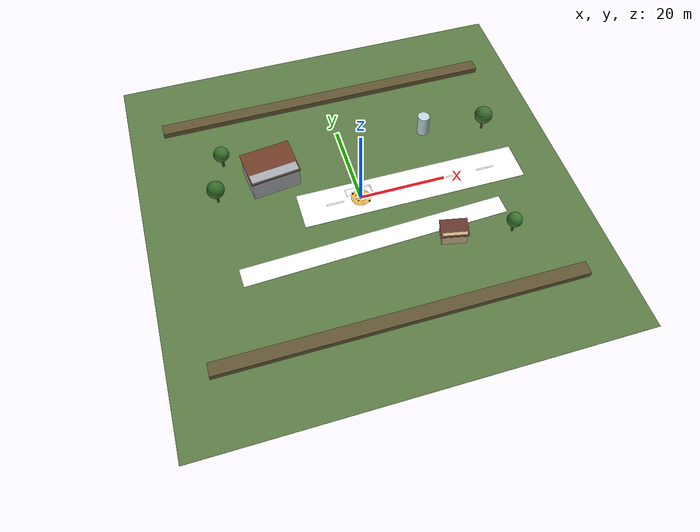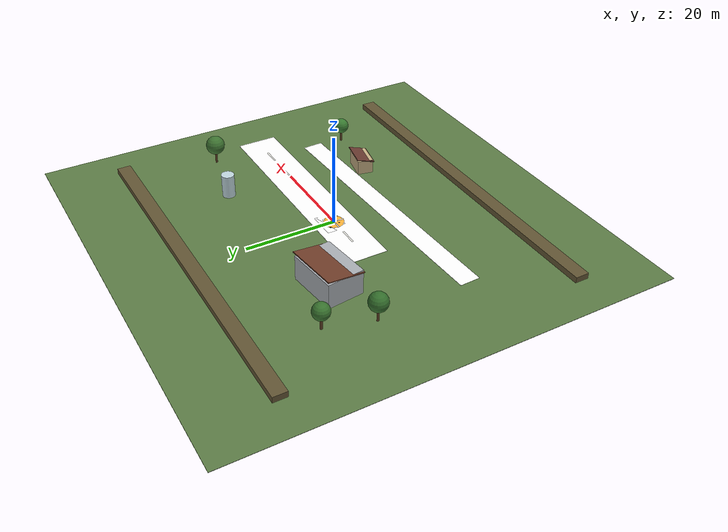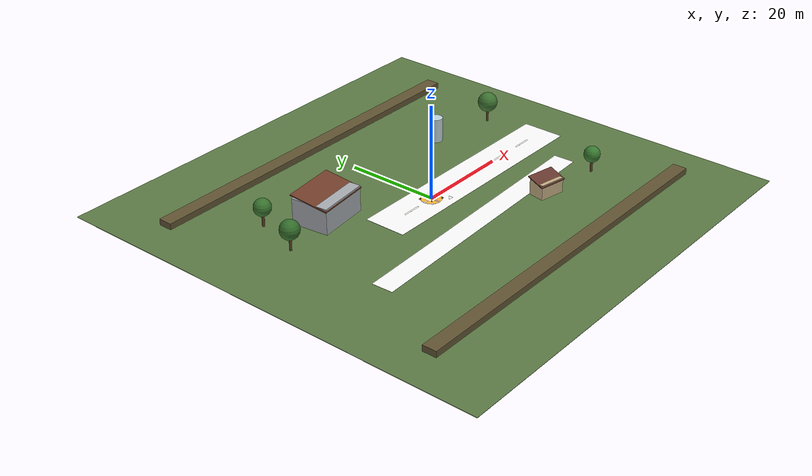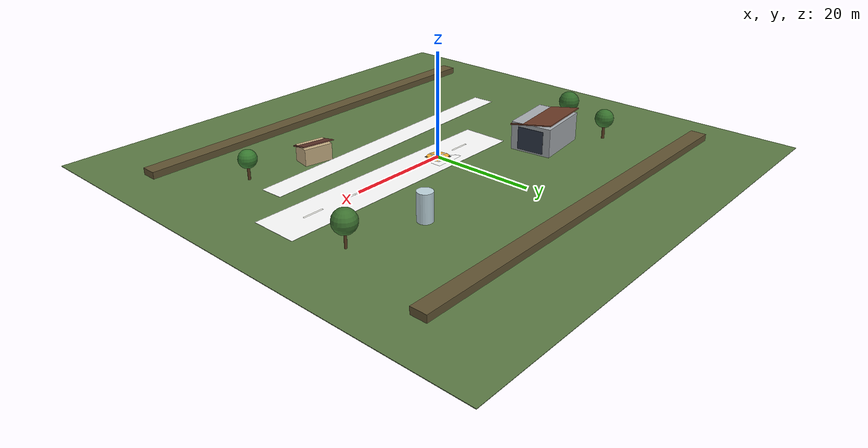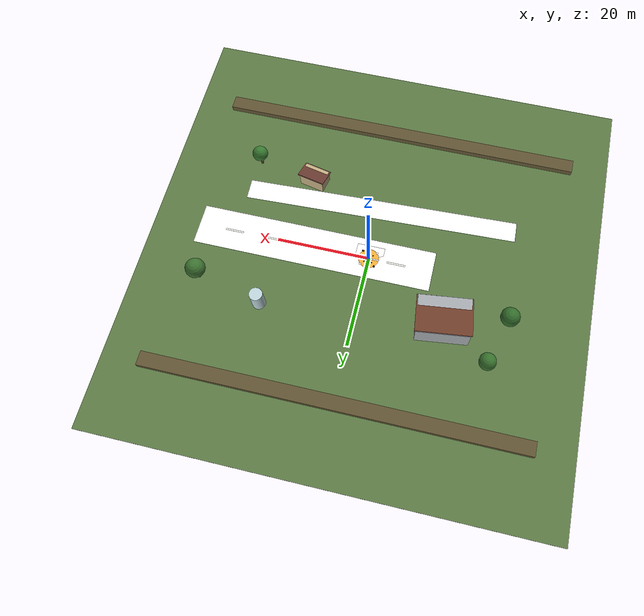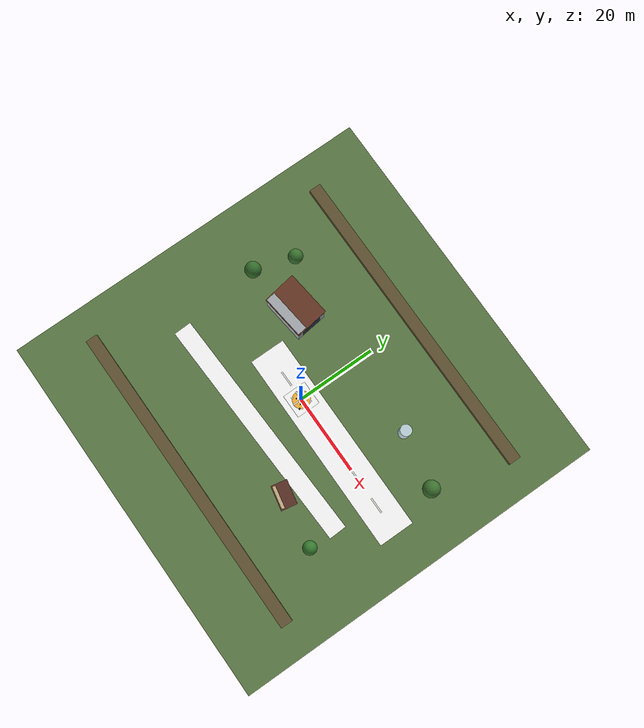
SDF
<sdf version="1.9">
 <world name="outdoor_world">
  <gravity>0 0 -9.81</gravity>
  <magnetic_field>6.0e-06 2.3e-05 -4.2e-05</magnetic_field>
  <atmosphere type="adiabatic"/>
  <physics name="physics" type="ode">
   <max_step_size>0.004</max_step_size>
   <real_time_factor>1.0</real_time_factor>
   <real_time_update_rate>250</real_time_update_rate>
  </physics>
  <plugin filename="gz-sim8-physics-system" name="gz::sim::systems::Physics"/>
  <plugin filename="gz-sim8-user-commands-system" name="gz::sim::systems::UserCommands"/>
  <plugin filename="gz-sim8-scene-broadcaster-system" name="gz::sim::systems::SceneBroadcaster"/>
  <plugin filename="gz-sim8-sensors-system" name="gz::sim::systems::Sensors">
   <render_engine>ogre2</render_engine>
  </plugin>
  <plugin filename="gz-sim8-imu-system" name="gz::sim::systems::Imu"/>
  <plugin filename="gz-sim8-air-pressure-system" name="gz::sim::systems::AirPressure"/>
  <scene>
   <ambient>0.74 0.78 0.82 1</ambient>
   <background>0.56 0.74 0.92 1</background>
   <shadows>false</shadows>
   <grid>false</grid>
  </scene>
  <light type="directional" name="sun">
   <cast_shadows>false</cast_shadows>
   <pose>0 0 24 0 0 0</pose>
   <diffuse>1 0.97 0.92 1</diffuse>
   <specular>0.25 0.25 0.25 1</specular>
   <direction>-0.35 0.28 -1</direction>
  </light>
  <model name="terrain_base">
   <static>true</static>
   <link name="link">
    <collision name="collision"><geometry><box><size>96 96 0.1</size></box></geometry></collision>
    <visual name="grass_base">
     <geometry><box><size>96 96 0.1</size></box></geometry>
     <material>
      <ambient>0.31 0.42 0.23 1</ambient>
      <diffuse>0.36 0.48 0.27 1</diffuse>
      <specular>0.02 0.02 0.02 1</specular>
     </material>
    </visual>
   </link>
   <pose>0 0 -0.05 0 0 0</pose>
  </model>
  <model name="runway">
   <static>true</static>
   <link name="link">
    <collision name="collision"><geometry><box><size>52 9 0.04</size></box></geometry></collision>
    <visual name="asphalt">
     <geometry><box><size>52 9 0.04</size></box></geometry>
     <material>
      <ambient>1 1 1 1</ambient>
      <diffuse>1 1 1 1</diffuse>
      <specular>0.04 0.04 0.04 1</specular>
      <pbr>
       <metal>
        <albedo_map>../models/materials/textures/runway_albedo.png</albedo_map>
        <metalness>0.0</metalness>
        <roughness>0.96</roughness>
       </metal>
      </pbr>
     </material>
    </visual>
    <visual name="center_line_1">
     <pose>-18 0 0.021 0 0 0</pose>
     <geometry><box><size>4 0.35 0.003</size></box></geometry>
     <material><ambient>0.95 0.95 0.92 1</ambient><diffuse>0.98 0.98 0.95 1</diffuse></material>
    </visual>
    <visual name="center_line_2">
     <pose>-9 0 0.021 0 0 0</pose>
     <geometry><box><size>4 0.35 0.003</size></box></geometry>
     <material><ambient>0.95 0.95 0.92 1</ambient><diffuse>0.98 0.98 0.95 1</diffuse></material>
    </visual>
    <visual name="center_line_3">
     <pose>0 0 0.021 0 0 0</pose>
     <geometry><box><size>4 0.35 0.003</size></box></geometry>
     <material><ambient>0.95 0.95 0.92 1</ambient><diffuse>0.98 0.98 0.95 1</diffuse></material>
    </visual>
    <visual name="center_line_4">
     <pose>9 0 0.021 0 0 0</pose>
     <geometry><box><size>4 0.35 0.003</size></box></geometry>
     <material><ambient>0.95 0.95 0.92 1</ambient><diffuse>0.98 0.98 0.95 1</diffuse></material>
    </visual>
    <visual name="center_line_5">
     <pose>18 0 0.021 0 0 0</pose>
     <geometry><box><size>4 0.35 0.003</size></box></geometry>
     <material><ambient>0.95 0.95 0.92 1</ambient><diffuse>0.98 0.98 0.95 1</diffuse></material>
    </visual>
   </link>
   <pose>12 0 0.02 0 0 0</pose>
  </model>
  <model name="flight_pad">
   <static>true</static>
   <link name="link">
    <collision name="collision"><geometry><box><size>6 6 0.04</size></box></geometry></collision>
    <visual name="concrete">
     <geometry><box><size>6 6 0.04</size></box></geometry>
     <material>
      <ambient>1 1 1 1</ambient>
      <diffuse>1 1 1 1</diffuse>
      <specular>0.04 0.04 0.04 1</specular>
      <pbr>
       <metal>
        <albedo_map>../models/materials/textures/flight_pad_albedo.png</albedo_map>
        <metalness>0.0</metalness>
        <roughness>0.92</roughness>
       </metal>
      </pbr>
     </material>
    </visual>
    <visual name="ring">
     <pose>0 0 0.021 0 0 0</pose>
     <geometry><cylinder><radius>2.2</radius><length>0.003</length></cylinder></geometry>
     <material><ambient>0.95 0.63 0.18 1</ambient><diffuse>0.98 0.7 0.22 1</diffuse></material>
    </visual>
    <visual name="inner_mark">
     <pose>0 0 0.022 0 0 0</pose>
     <geometry><box><size>0.55 0.55 0.003</size></box></geometry>
     <material><ambient>0.08 0.08 0.08 1</ambient><diffuse>0.11 0.11 0.11 1</diffuse></material>
    </visual>
    <visual name="flow_marker_nw">
     <pose>-0.8 0.8 0.023 0 0 0</pose>
     <geometry><box><size>0.28 0.28 0.003</size></box></geometry>
     <material><ambient>0.08 0.08 0.08 1</ambient><diffuse>0.11 0.11 0.11 1</diffuse></material>
    </visual>
    <visual name="flow_marker_n">
     <pose>0 0.8 0.023 0 0 0</pose>
     <geometry><box><size>0.28 0.28 0.003</size></box></geometry>
     <material><ambient>0.93 0.93 0.93 1</ambient><diffuse>0.98 0.98 0.98 1</diffuse></material>
    </visual>
    <visual name="flow_marker_ne">
     <pose>0.8 0.8 0.023 0 0 0</pose>
     <geometry><box><size>0.28 0.28 0.003</size></box></geometry>
     <material><ambient>0.08 0.08 0.08 1</ambient><diffuse>0.11 0.11 0.11 1</diffuse></material>
    </visual>
    <visual name="flow_marker_w">
     <pose>-0.8 0 0.023 0 0 0</pose>
     <geometry><box><size>0.28 0.28 0.003</size></box></geometry>
     <material><ambient>0.93 0.93 0.93 1</ambient><diffuse>0.98 0.98 0.98 1</diffuse></material>
    </visual>
    <visual name="flow_marker_e">
     <pose>0.8 0 0.023 0 0 0</pose>
     <geometry><box><size>0.28 0.28 0.003</size></box></geometry>
     <material><ambient>0.93 0.93 0.93 1</ambient><diffuse>0.98 0.98 0.98 1</diffuse></material>
    </visual>
    <visual name="flow_marker_sw">
     <pose>-0.8 -0.8 0.023 0 0 0</pose>
     <geometry><box><size>0.28 0.28 0.003</size></box></geometry>
     <material><ambient>0.08 0.08 0.08 1</ambient><diffuse>0.11 0.11 0.11 1</diffuse></material>
    </visual>
    <visual name="flow_marker_s">
     <pose>0 -0.8 0.023 0 0 0</pose>
     <geometry><box><size>0.28 0.28 0.003</size></box></geometry>
     <material><ambient>0.93 0.93 0.93 1</ambient><diffuse>0.98 0.98 0.98 1</diffuse></material>
    </visual>
    <visual name="flow_marker_se">
     <pose>0.8 -0.8 0.023 0 0 0</pose>
     <geometry><box><size>0.28 0.28 0.003</size></box></geometry>
     <material><ambient>0.08 0.08 0.08 1</ambient><diffuse>0.11 0.11 0.11 1</diffuse></material>
    </visual>
    <visual name="cross_ns">
     <pose>0 0 0.022 0 0 0</pose>
     <geometry><box><size>0.3 4.5 0.003</size></box></geometry>
     <material><ambient>0.93 0.93 0.93 1</ambient><diffuse>0.98 0.98 0.98 1</diffuse></material>
    </visual>
    <visual name="cross_ew">
     <pose>0 0 0.022 0 0 0</pose>
     <geometry><box><size>4.5 0.3 0.003</size></box></geometry>
     <material><ambient>0.93 0.93 0.93 1</ambient><diffuse>0.98 0.98 0.98 1</diffuse></material>
    </visual>
    <visual name="pad_marker_nw">
     <pose>-1.5 1.55 0.023 0 0 0</pose>
     <geometry><box><size>0.4 0.4 0.003</size></box></geometry>
     <material><ambient>0.08 0.08 0.08 1</ambient><diffuse>0.11 0.11 0.11 1</diffuse></material>
    </visual>
    <visual name="pad_marker_ne">
     <pose>1.55 1.55 0.023 0 0 0</pose>
     <geometry><box><size>0.4 0.4 0.003</size></box></geometry>
     <material><ambient>0.93 0.93 0.93 1</ambient><diffuse>0.98 0.98 0.98 1</diffuse></material>
    </visual>
    <visual name="pad_marker_sw">
     <pose>-1.55 -1.55 0.023 0 0 0</pose>
     <geometry><box><size>0.4 0.4 0.003</size></box></geometry>
     <material><ambient>0.93 0.93 0.93 1</ambient><diffuse>0.98 0.98 0.98 1</diffuse></material>
    </visual>
    <visual name="pad_marker_se">
     <pose>1.55 -1.55 0.023 0 0 0</pose>
     <geometry><box><size>0.4 0.4 0.003</size></box></geometry>
     <material><ambient>0.08 0.08 0.08 1</ambient><diffuse>0.11 0.11 0.11 1</diffuse></material>
    </visual>
   </link>
   <pose>0 0 0.02 0 0 0</pose>
  </model>
  <model name="service_road">
   <static>true</static>
   <link name="link">
    <collision name="collision"><geometry><box><size>60 4.5 0.03</size></box></geometry></collision>
    <visual name="visual">
     <geometry><box><size>60 4.5 0.03</size></box></geometry>
     <material>
      <ambient>1 1 1 1</ambient>
      <diffuse>1 1 1 1</diffuse>
      <specular>0.05 0.05 0.05 1</specular>
      <pbr>
       <metal>
        <albedo_map>../models/materials/textures/service_road_albedo.png</albedo_map>
        <metalness>0.0</metalness>
        <roughness>0.95</roughness>
       </metal>
      </pbr>
     </material>
    </visual>
   </link>
   <pose>0 -12 0.015 0 0 0.04</pose>
  </model>
  <model name="hangar">
   <static>true</static>
   <link name="link">
    <collision name="collision"><geometry><box><size>11 8 5.5</size></box></geometry></collision>
    <visual name="shell">
     <geometry><box><size>11 8 5.5</size></box></geometry>
     <material><ambient>0.54 0.56 0.58 1</ambient><diffuse>0.66 0.68 0.7 1</diffuse></material>
    </visual>
    <visual name="door">
     <pose>5.51 0 -0.2 0 0 0</pose>
     <geometry><box><size>0.08 5.2 4.4</size></box></geometry>
     <material><ambient>0.15 0.18 0.22 1</ambient><diffuse>0.18 0.22 0.28 1</diffuse></material>
    </visual>
    <visual name="roof_cap">
     <pose>0 0 2.9 0.16 0 0</pose>
     <geometry><box><size>11.5 8.4 0.22</size></box></geometry>
     <material><ambient>0.34 0.18 0.12 1</ambient><diffuse>0.44 0.24 0.16 1</diffuse></material>
    </visual>
   </link>
   <pose>-18 11 2.75 0 0 0.12</pose>
  </model>
  <model name="operations_shed">
   <static>true</static>
   <link name="link">
    <collision name="collision"><geometry><box><size>5.5 3.5 3.2</size></box></geometry></collision>
    <visual name="shell">
     <geometry><box><size>5.5 3.5 3.2</size></box></geometry>
     <material><ambient>0.69 0.61 0.45 1</ambient><diffuse>0.78 0.69 0.52 1</diffuse></material>
    </visual>
    <visual name="roof">
     <pose>0 0 1.75 0.25 0 0</pose>
     <geometry><box><size>6.1 4.1 0.18</size></box></geometry>
     <material><ambient>0.32 0.16 0.12 1</ambient><diffuse>0.4 0.22 0.18 1</diffuse></material>
    </visual>
   </link>
   <pose>16 -16 1.6 0 0 -0.2</pose>
  </model>
  <model name="water_tank">
   <static>true</static>
   <link name="link">
    <collision name="collision">
     <geometry><cylinder><radius>1.4</radius><length>5.2</length></cylinder></geometry>
    </collision>
    <visual name="visual">
     <geometry><cylinder><radius>1.4</radius><length>5.2</length></cylinder></geometry>
     <material><ambient>0.68 0.76 0.79 1</ambient><diffuse>0.75 0.84 0.87 1</diffuse></material>
    </visual>
   </link>
   <pose>20 15 2.6 0 0 0</pose>
  </model>
  <model name="tree_cluster_west_1">
   <static>true</static>
   <link name="link">
    <visual name="trunk">
     <pose>0 0 1.25 0 0 0</pose>
     <geometry><cylinder><radius>0.28</radius><length>2.5</length></cylinder></geometry>
     <material><ambient>0.28 0.19 0.1 1</ambient><diffuse>0.35 0.24 0.13 1</diffuse></material>
    </visual>
    <visual name="canopy">
     <pose>0 0 4.1 0 0 0</pose>
     <geometry><sphere><radius>1.8</radius></sphere></geometry>
     <material><ambient>0.16 0.35 0.14 1</ambient><diffuse>0.22 0.45 0.18 1</diffuse></material>
    </visual>
   </link>
   <pose>-28 18 0 0 0 0</pose>
  </model>
  <model name="tree_cluster_west_2">
   <static>true</static>
   <link name="link">
    <visual name="trunk">
     <pose>0 0 1.35 0 0 0</pose>
     <geometry><cylinder><radius>0.25</radius><length>2.7</length></cylinder></geometry>
     <material><ambient>0.28 0.19 0.1 1</ambient><diffuse>0.35 0.24 0.13 1</diffuse></material>
    </visual>
    <visual name="canopy">
     <pose>0 0 4.4 0 0 0</pose>
     <geometry><sphere><radius>2.0</radius></sphere></geometry>
     <material><ambient>0.15 0.33 0.13 1</ambient><diffuse>0.2 0.43 0.17 1</diffuse></material>
    </visual>
   </link>
   <pose>-31 8 0 0 0 0</pose>
  </model>
  <model name="tree_cluster_east_1">
   <static>true</static>
   <link name="link">
    <visual name="trunk">
     <pose>0 0 1.2 0 0 0</pose>
     <geometry><cylinder><radius>0.26</radius><length>2.4</length></cylinder></geometry>
     <material><ambient>0.28 0.19 0.1 1</ambient><diffuse>0.35 0.24 0.13 1</diffuse></material>
    </visual>
    <visual name="canopy">
     <pose>0 0 3.9 0 0 0</pose>
     <geometry><sphere><radius>1.7</radius></sphere></geometry>
     <material><ambient>0.16 0.36 0.15 1</ambient><diffuse>0.22 0.48 0.19 1</diffuse></material>
    </visual>
   </link>
   <pose>29 -18 0 0 0 0</pose>
  </model>
  <model name="tree_cluster_east_2">
   <static>true</static>
   <link name="link">
    <visual name="trunk">
     <pose>0 0 1.45 0 0 0</pose>
     <geometry><cylinder><radius>0.24</radius><length>2.9</length></cylinder></geometry>
     <material><ambient>0.28 0.19 0.1 1</ambient><diffuse>0.35 0.24 0.13 1</diffuse></material>
    </visual>
    <visual name="canopy">
     <pose>0 0 4.5 0 0 0</pose>
     <geometry><sphere><radius>2.1</radius></sphere></geometry>
     <material><ambient>0.17 0.34 0.14 1</ambient><diffuse>0.24 0.45 0.19 1</diffuse></material>
    </visual>
   </link>
   <pose>34 12 0 0 0 0</pose>
  </model>
  <model name="perimeter_berm_north">
   <static>true</static>
   <link name="link">
    <collision name="collision"><geometry><box><size>80 3 1.3</size></box></geometry></collision>
    <visual name="visual">
     <geometry><box><size>80 3 1.3</size></box></geometry>
     <material><ambient>0.3 0.26 0.16 1</ambient><diffuse>0.38 0.33 0.2 1</diffuse></material>
    </visual>
   </link>
   <pose>0 32 0.65 0 0 0</pose>
  </model>
  <model name="perimeter_berm_south">
   <static>true</static>
   <link name="link">
    <collision name="collision"><geometry><box><size>80 3 1.3</size></box></geometry></collision>
    <visual name="visual">
     <geometry><box><size>80 3 1.3</size></box></geometry>
     <material><ambient>0.3 0.26 0.16 1</ambient><diffuse>0.38 0.33 0.2 1</diffuse></material>
    </visual>
   </link>
   <pose>0 -32 0.65 0 0 0</pose>
  </model>
 </world>
</sdf>
